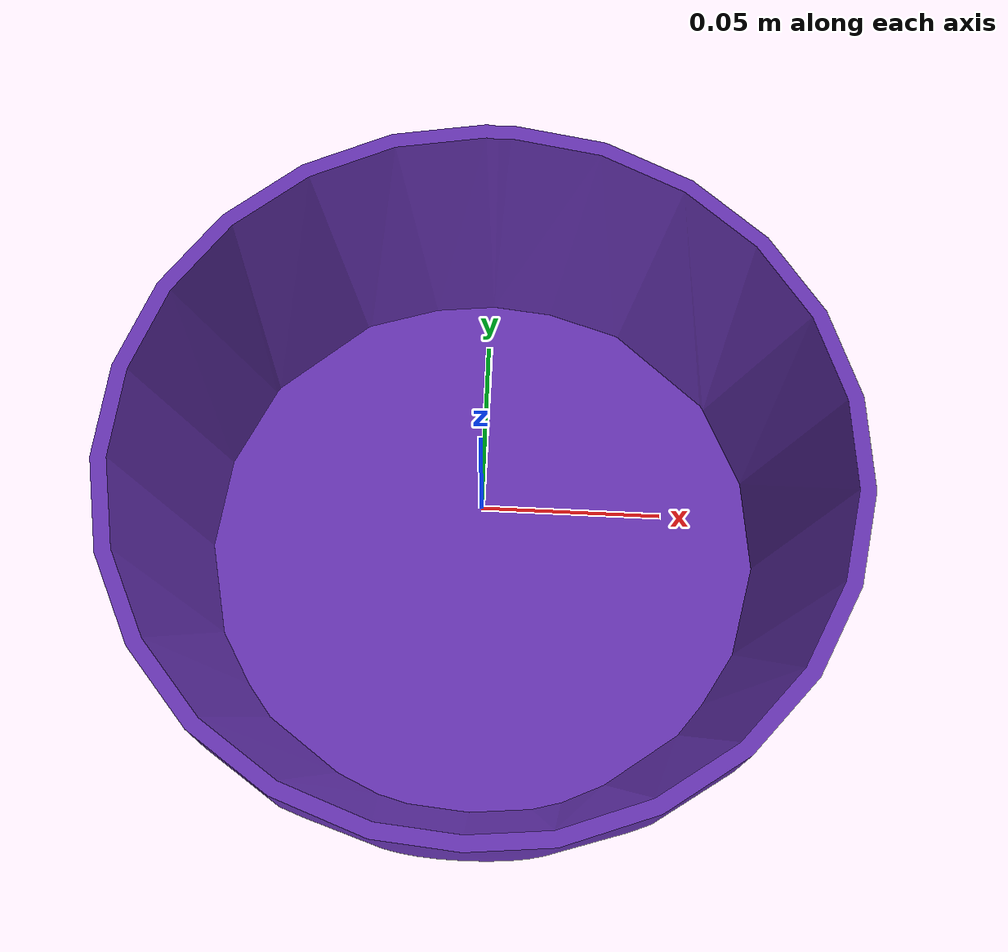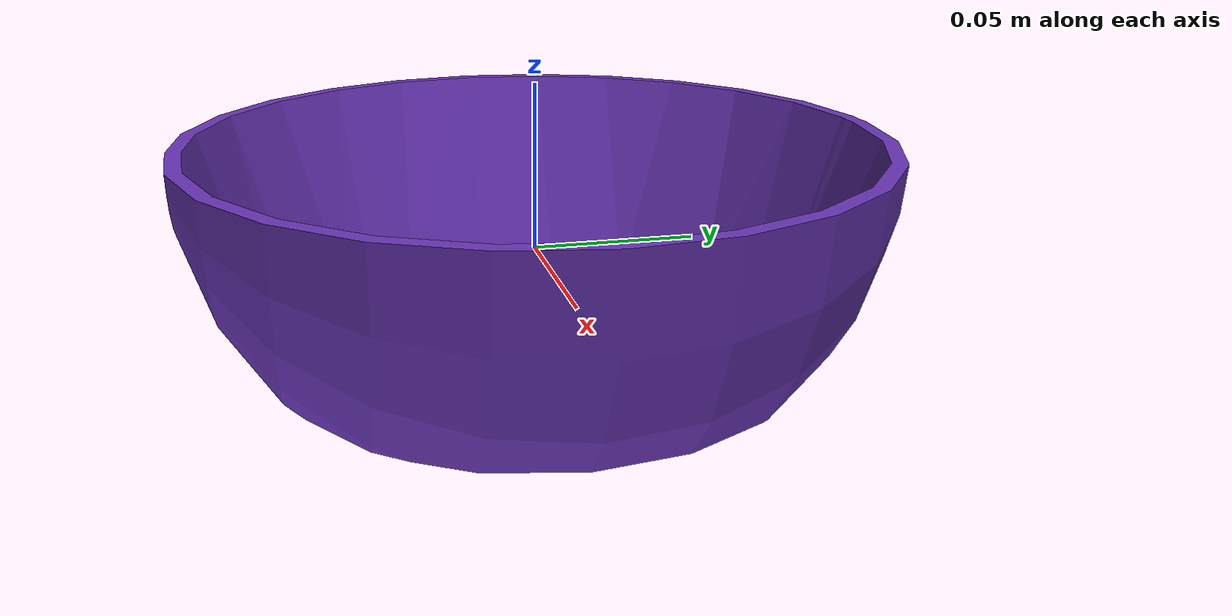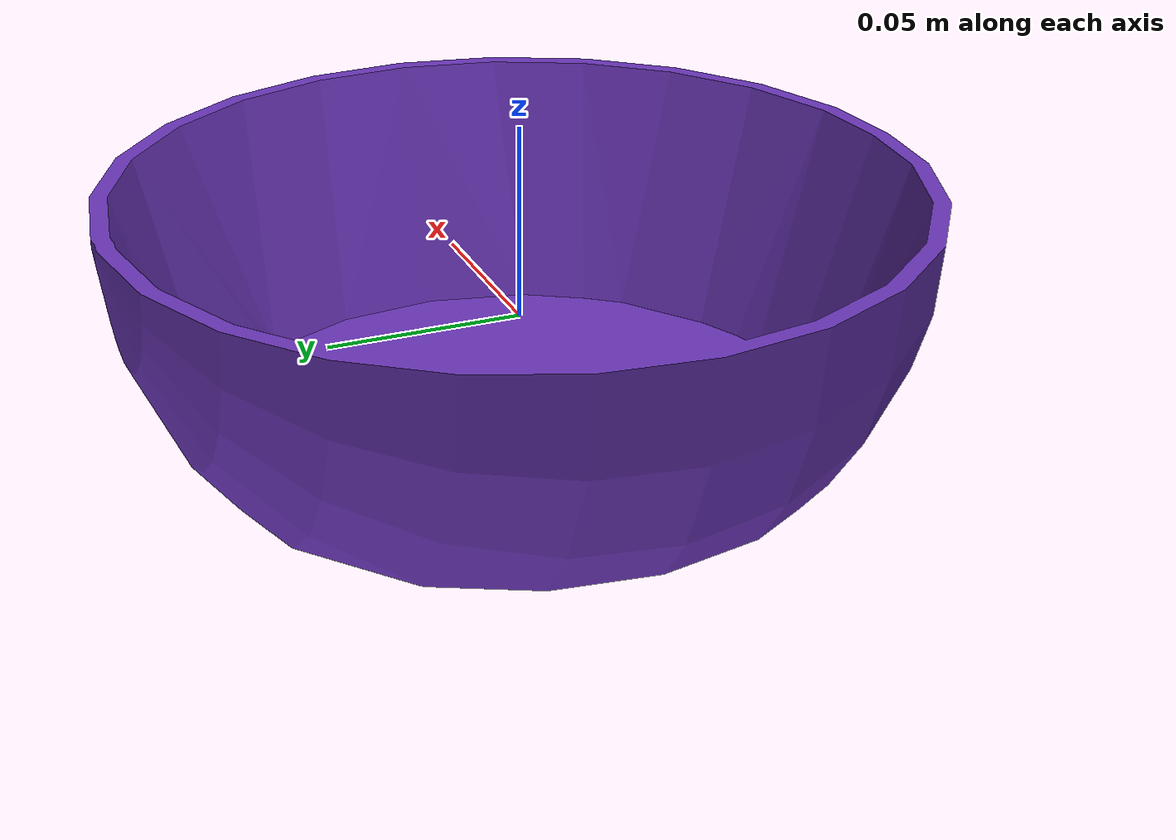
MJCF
<mujoco model="top_watertight_tiny">
  <default>
    <default group="2" type="mesh" contype="0" conaffinity="0">
      <geom group="2" type="mesh" contype="0" conaffinity="0"/>
    </default>
    <default group="3" type="mesh">
      <geom group="3" type="mesh"/>
    </default>
  </default>
  <asset>
    <mesh file="top_watertight_tiny.obj"/>
    <mesh file="top_watertight_tiny_collision_0.obj"/>
    <mesh file="top_watertight_tiny_collision_1.obj"/>
    <mesh file="top_watertight_tiny_collision_2.obj"/>
    <mesh file="top_watertight_tiny_collision_3.obj"/>
    <mesh file="top_watertight_tiny_collision_4.obj"/>
    <mesh file="top_watertight_tiny_collision_5.obj"/>
    <mesh file="top_watertight_tiny_collision_6.obj"/>
    <mesh file="top_watertight_tiny_collision_7.obj"/>
    <mesh file="top_watertight_tiny_collision_8.obj"/>
    <mesh file="top_watertight_tiny_collision_9.obj"/>
    <mesh file="top_watertight_tiny_collision_10.obj"/>
    <mesh file="top_watertight_tiny_collision_11.obj"/>
    <mesh file="top_watertight_tiny_collision_12.obj"/>
    <mesh file="top_watertight_tiny_collision_13.obj"/>
    <mesh file="top_watertight_tiny_collision_14.obj"/>
    <mesh file="top_watertight_tiny_collision_15.obj"/>
    <mesh file="top_watertight_tiny_collision_16.obj"/>
    <mesh file="top_watertight_tiny_collision_17.obj"/>
    <mesh file="top_watertight_tiny_collision_18.obj"/>
    <mesh file="top_watertight_tiny_collision_19.obj"/>
    <mesh file="top_watertight_tiny_collision_20.obj"/>
  </asset>
  <worldbody>
    <body name="top_watertight_tiny">
      <freejoint/>
      <geom mesh="top_watertight_tiny" group="2" type="mesh" rgba="0.4 0.2 0.7 1" contype="0" conaffinity="0"/>
      <geom mesh="top_watertight_tiny_collision_0" rgba="0.5134848125236428 0.915191259637841 0.026688777892308724 1" group="3" type="mesh"/>
      <geom mesh="top_watertight_tiny_collision_1" rgba="0.6843550179440053 0.6721617672289515 0.732373298183849 1" group="3" type="mesh"/>
      <geom mesh="top_watertight_tiny_collision_2" rgba="0.5935627238549809 0.9467684861155139 0.23611872555899405 1" group="3" type="mesh"/>
      <geom mesh="top_watertight_tiny_collision_3" rgba="0.533487099794048 0.39701545759057033 0.21447906208398793 1" group="3" type="mesh"/>
      <geom mesh="top_watertight_tiny_collision_4" rgba="0.21374153771345117 0.4965513833929913 0.6254012205158304 1" group="3" type="mesh"/>
      <geom mesh="top_watertight_tiny_collision_5" rgba="0.6216141899470238 0.5728297132912641 0.06265726568852859 1" group="3" type="mesh"/>
      <geom mesh="top_watertight_tiny_collision_6" rgba="0.27426007105956274 0.78341375641445 0.20905146461437407 1" group="3" type="mesh"/>
      <geom mesh="top_watertight_tiny_collision_7" rgba="0.048010424843766164 0.5627387973280946 0.10749039808835692 1" group="3" type="mesh"/>
      <geom mesh="top_watertight_tiny_collision_8" rgba="0.8501645620790643 0.8261655075699706 0.5279934635211135 1" group="3" type="mesh"/>
      <geom mesh="top_watertight_tiny_collision_9" rgba="0.4350788697157323 0.6914314644768988 0.27628174359749447 1" group="3" type="mesh"/>
      <geom mesh="top_watertight_tiny_collision_10" rgba="0.014231918690869372 0.7001844562229192 0.2288573135596106 1" group="3" type="mesh"/>
      <geom mesh="top_watertight_tiny_collision_11" rgba="0.004840875157975599 0.12886499129027518 0.8092542262927843 1" group="3" type="mesh"/>
      <geom mesh="top_watertight_tiny_collision_12" rgba="0.33479625272902813 0.12586760223460258 0.8213515732053833 1" group="3" type="mesh"/>
      <geom mesh="top_watertight_tiny_collision_13" rgba="0.43900308552038125 0.8316959777701338 0.6328125127779942 1" group="3" type="mesh"/>
      <geom mesh="top_watertight_tiny_collision_14" rgba="0.31367700183255975 0.6061781859704147 0.10661779249418768 1" group="3" type="mesh"/>
      <geom mesh="top_watertight_tiny_collision_15" rgba="0.5829255584090017 0.5775365102687409 0.01606183998504007 1" group="3" type="mesh"/>
      <geom mesh="top_watertight_tiny_collision_16" rgba="0.5934146080169834 0.07829962404960378 0.959516969910784 1" group="3" type="mesh"/>
      <geom mesh="top_watertight_tiny_collision_17" rgba="0.9310005546583486 0.2765396058597027 0.9351395051688316 1" group="3" type="mesh"/>
      <geom mesh="top_watertight_tiny_collision_18" rgba="0.4610034041574509 0.895634366064533 0.36949021229121237 1" group="3" type="mesh"/>
      <geom mesh="top_watertight_tiny_collision_19" rgba="0.7685081175895686 0.8926975835492158 0.17673958780741794 1" group="3" type="mesh"/>
      <geom mesh="top_watertight_tiny_collision_20" rgba="0.7993032323048967 0.1263809831002508 0.5757493540693867 1" group="3" type="mesh"/>
    </body>
  </worldbody>
</mujoco>
